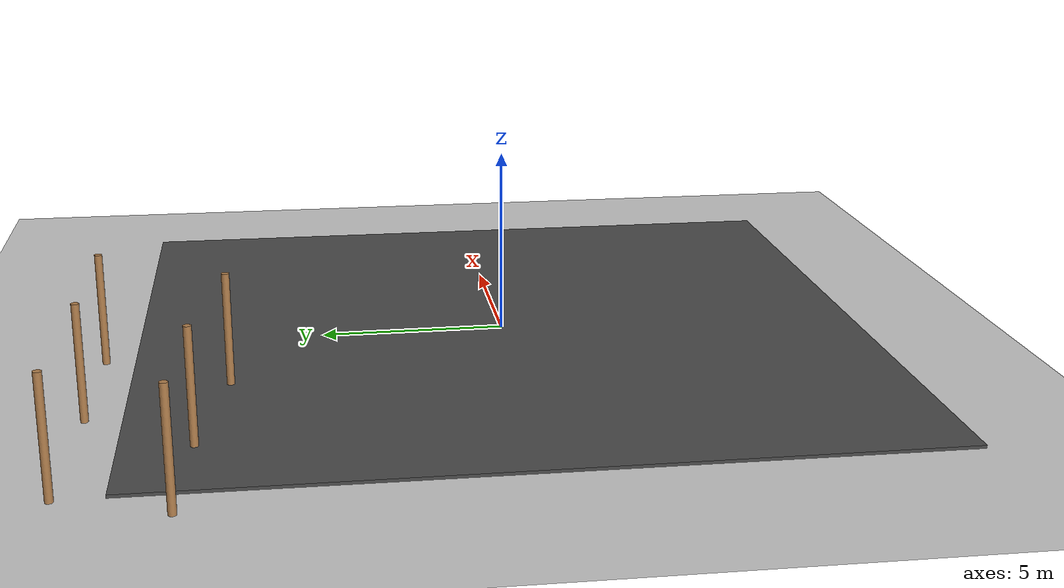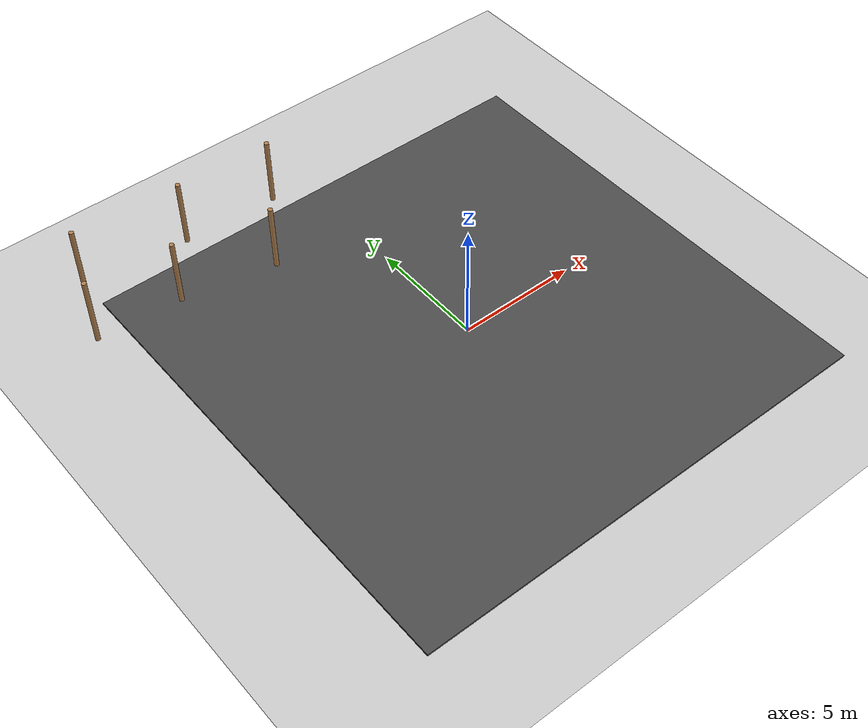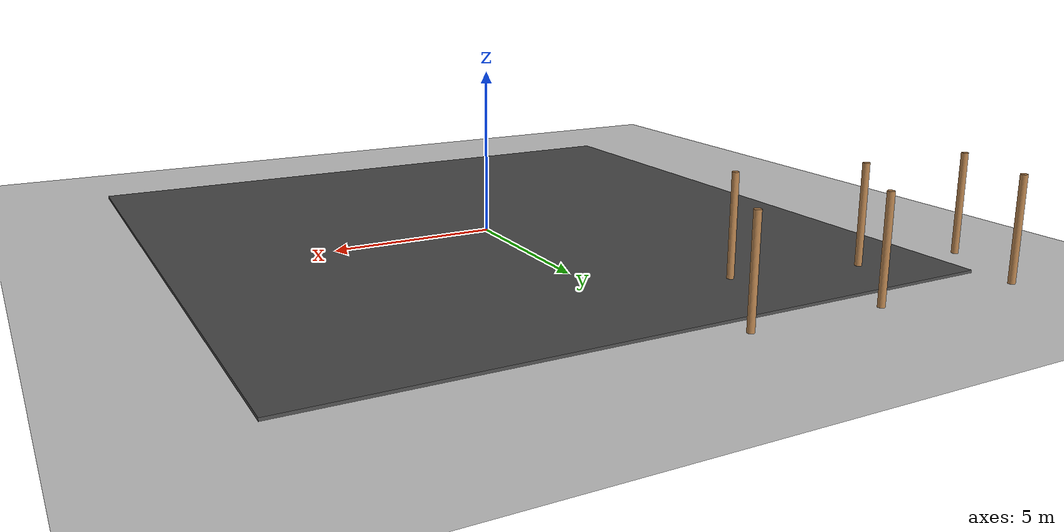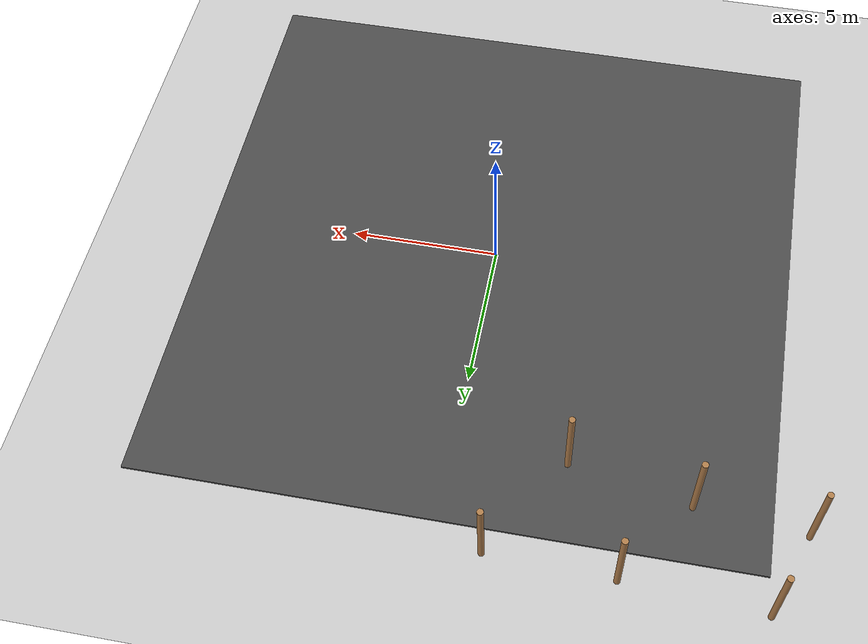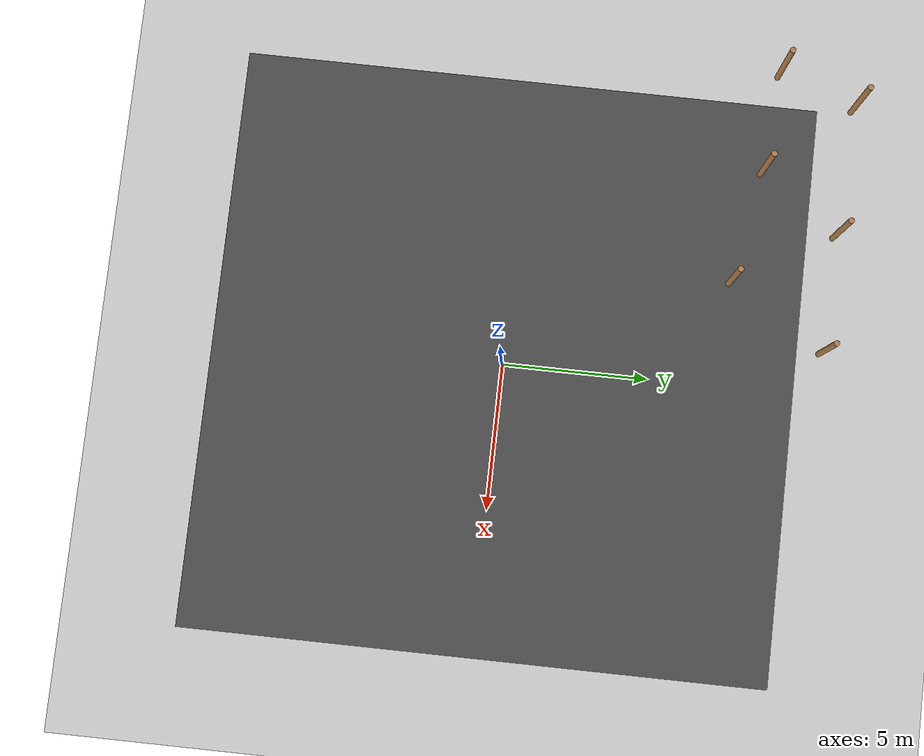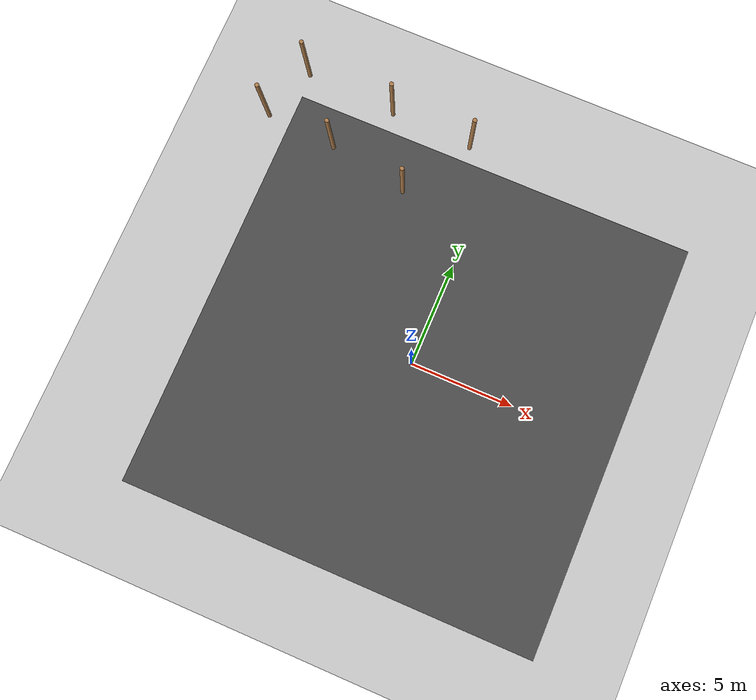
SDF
<sdf version="1.6">
 <world name="default">
  <include><uri>model://ground_plane</uri></include>
  <model name="asphalt_plane">
   <static>1</static>
   <link name="link">
    <collision name="collision"><geometry><box><size>20 20 0.1</size></box></geometry></collision>
    <visual name="visual">
     <cast_shadows>0</cast_shadows>
     <geometry><box><size>20 20 0.1</size></box></geometry>
     <material>
      <script>
       <uri>model://asphalt_plane/materials/scripts</uri>
       <uri>model://asphalt_plane/materials/textures</uri>
       <name>vrc/asphalt</name>
      </script>
     </material>
    </visual>
   </link>
  </model>
  <model name="wooden_cylinder1_clone_0">
   <pose>-11.0868 8.52775 -6.1e-05 0 -0 0</pose>
   <link name="wooden_cylinder::link_0">
    <pose>0 0 1.5 0 -0 0</pose>
    <inertial>
     <mass>1</mass>
     <inertia><ixx>0.145833</ixx><ixy>0</ixy><ixz>0</ixz><iyy>0.145833</iyy><iyz>0</iyz><izz>0.125</izz></inertia>
    </inertial>
    <visual name="visual">
     <geometry><cylinder><radius>0.1</radius><length>3</length></cylinder></geometry>
     <material>
      <lighting>1</lighting>
      <script><uri>file://media/materials/scripts/gazebo.material</uri><name>Gazebo/Wood</name></script>
      <ambient>0.3 0.3 0.3 1</ambient>
      <diffuse>0.7 0.7 0.7 1</diffuse>
      <specular>0.01 0.01 0.01 1</specular>
      <emissive>0 0 0 1</emissive>
      <shader type="vertex"><normal_map>__default__</normal_map></shader>
     </material>
    </visual>
    <collision name="collision">
     <geometry><cylinder><radius>0.1</radius><length>3</length></cylinder></geometry>
     <surface>
      <friction>
       <ode><mu>1</mu><mu2>1</mu2><fdir1>0 0 0</fdir1><slip1>0</slip1><slip2>0</slip2></ode>
       <torsional>
        <coefficient>1</coefficient>
        <patch_radius>0</patch_radius>
        <surface_radius>0</surface_radius>
        <use_patch_radius>1</use_patch_radius>
        <ode><slip>0</slip></ode>
       </torsional>
      </friction>
      <bounce><restitution_coefficient>0</restitution_coefficient><threshold>1e+06</threshold></bounce>
      <contact>
       <collide_without_contact>0</collide_without_contact>
       <collide_without_contact_bitmask>1</collide_without_contact_bitmask>
       <collide_bitmask>1</collide_bitmask>
       <ode>
        <soft_cfm>0</soft_cfm>
        <soft_erp>0.2</soft_erp>
        <kp>1e+13</kp>
        <kd>1</kd>
        <max_vel>0.01</max_vel>
        <min_depth>0</min_depth>
       </ode>
       <bullet>
        <split_impulse>1</split_impulse>
        <split_impulse_penetration_threshold>-0.01</split_impulse_penetration_threshold>
        <soft_cfm>0</soft_cfm>
        <soft_erp>0.2</soft_erp>
        <kp>1e+13</kp>
        <kd>1</kd>
       </bullet>
      </contact>
     </surface>
    </collision>
   </link>
   <static>1</static>
  </model>
  <model name="wooden_cylinder1_clone_31">
   <pose>-7.54136 8.21907 -8.2e-05 0 -0 0</pose>
   <link name="wooden_cylinder::link_0">
    <pose>0 0 1.5 0 -0 0</pose>
    <inertial>
     <mass>1</mass>
     <inertia><ixx>0.145833</ixx><ixy>0</ixy><ixz>0</ixz><iyy>0.145833</iyy><iyz>0</iyz><izz>0.125</izz></inertia>
    </inertial>
    <visual name="visual">
     <geometry><cylinder><radius>0.1</radius><length>3</length></cylinder></geometry>
     <material>
      <lighting>1</lighting>
      <script><uri>file://media/materials/scripts/gazebo.material</uri><name>Gazebo/Wood</name></script>
      <ambient>0.3 0.3 0.3 1</ambient>
      <diffuse>0.7 0.7 0.7 1</diffuse>
      <specular>0.01 0.01 0.01 1</specular>
      <emissive>0 0 0 1</emissive>
      <shader type="vertex"><normal_map>__default__</normal_map></shader>
     </material>
    </visual>
    <collision name="collision">
     <geometry><cylinder><radius>0.1</radius><length>3</length></cylinder></geometry>
     <surface>
      <friction>
       <ode><mu>1</mu><mu2>1</mu2><fdir1>0 0 0</fdir1><slip1>0</slip1><slip2>0</slip2></ode>
       <torsional>
        <coefficient>1</coefficient>
        <patch_radius>0</patch_radius>
        <surface_radius>0</surface_radius>
        <use_patch_radius>1</use_patch_radius>
        <ode><slip>0</slip></ode>
       </torsional>
      </friction>
      <bounce><restitution_coefficient>0</restitution_coefficient><threshold>1e+06</threshold></bounce>
      <contact>
       <collide_without_contact>0</collide_without_contact>
       <collide_without_contact_bitmask>1</collide_without_contact_bitmask>
       <collide_bitmask>1</collide_bitmask>
       <ode>
        <soft_cfm>0</soft_cfm>
        <soft_erp>0.2</soft_erp>
        <kp>1e+13</kp>
        <kd>1</kd>
        <max_vel>0.01</max_vel>
        <min_depth>0</min_depth>
       </ode>
       <bullet>
        <split_impulse>1</split_impulse>
        <split_impulse_penetration_threshold>-0.01</split_impulse_penetration_threshold>
        <soft_cfm>0</soft_cfm>
        <soft_erp>0.2</soft_erp>
        <kp>1e+13</kp>
        <kd>1</kd>
       </bullet>
      </contact>
     </surface>
    </collision>
   </link>
   <static>1</static>
  </model>
  <model name="wooden_cylinder1_clone_33">
   <pose>-3.60261 7.46972 3.2e-05 0 -0 0</pose>
   <link name="wooden_cylinder::link_0">
    <pose>0 0 1.5 0 -0 0</pose>
    <inertial>
     <mass>1</mass>
     <inertia><ixx>0.145833</ixx><ixy>0</ixy><ixz>0</ixz><iyy>0.145833</iyy><iyz>0</iyz><izz>0.125</izz></inertia>
    </inertial>
    <visual name="visual">
     <geometry><cylinder><radius>0.1</radius><length>3</length></cylinder></geometry>
     <material>
      <lighting>1</lighting>
      <script><uri>file://media/materials/scripts/gazebo.material</uri><name>Gazebo/Wood</name></script>
      <ambient>0.3 0.3 0.3 1</ambient>
      <diffuse>0.7 0.7 0.7 1</diffuse>
      <specular>0.01 0.01 0.01 1</specular>
      <emissive>0 0 0 1</emissive>
      <shader type="vertex"><normal_map>__default__</normal_map></shader>
     </material>
    </visual>
    <collision name="collision">
     <geometry><cylinder><radius>0.1</radius><length>3</length></cylinder></geometry>
     <surface>
      <friction>
       <ode><mu>1</mu><mu2>1</mu2><fdir1>0 0 0</fdir1><slip1>0</slip1><slip2>0</slip2></ode>
       <torsional>
        <coefficient>1</coefficient>
        <patch_radius>0</patch_radius>
        <surface_radius>0</surface_radius>
        <use_patch_radius>1</use_patch_radius>
        <ode><slip>0</slip></ode>
       </torsional>
      </friction>
      <bounce><restitution_coefficient>0</restitution_coefficient><threshold>1e+06</threshold></bounce>
      <contact>
       <collide_without_contact>0</collide_without_contact>
       <collide_without_contact_bitmask>1</collide_without_contact_bitmask>
       <collide_bitmask>1</collide_bitmask>
       <ode>
        <soft_cfm>0</soft_cfm>
        <soft_erp>0.2</soft_erp>
        <kp>1e+13</kp>
        <kd>1</kd>
        <max_vel>0.01</max_vel>
        <min_depth>0</min_depth>
       </ode>
       <bullet>
        <split_impulse>1</split_impulse>
        <split_impulse_penetration_threshold>-0.01</split_impulse_penetration_threshold>
        <soft_cfm>0</soft_cfm>
        <soft_erp>0.2</soft_erp>
        <kp>1e+13</kp>
        <kd>1</kd>
       </bullet>
      </contact>
     </surface>
    </collision>
   </link>
   <static>1</static>
  </model>
  <model name="wooden_cylinder1_clone_36">
   <pose>-10.1014 11.1845 6.2e-05 0 -0 0</pose>
   <link name="wooden_cylinder::link_0">
    <pose>0 0 1.5 0 -0 0</pose>
    <inertial>
     <mass>1</mass>
     <inertia><ixx>0.145833</ixx><ixy>0</ixy><ixz>0</ixz><iyy>0.145833</iyy><iyz>0</iyz><izz>0.125</izz></inertia>
    </inertial>
    <visual name="visual">
     <geometry><cylinder><radius>0.1</radius><length>3</length></cylinder></geometry>
     <material>
      <lighting>1</lighting>
      <script><uri>file://media/materials/scripts/gazebo.material</uri><name>Gazebo/Wood</name></script>
      <ambient>0.3 0.3 0.3 1</ambient>
      <diffuse>0.7 0.7 0.7 1</diffuse>
      <specular>0.01 0.01 0.01 1</specular>
      <emissive>0 0 0 1</emissive>
      <shader type="vertex"><normal_map>__default__</normal_map></shader>
     </material>
    </visual>
    <collision name="collision">
     <geometry><cylinder><radius>0.1</radius><length>3</length></cylinder></geometry>
     <surface>
      <friction>
       <ode><mu>1</mu><mu2>1</mu2><fdir1>0 0 0</fdir1><slip1>0</slip1><slip2>0</slip2></ode>
       <torsional>
        <coefficient>1</coefficient>
        <patch_radius>0</patch_radius>
        <surface_radius>0</surface_radius>
        <use_patch_radius>1</use_patch_radius>
        <ode><slip>0</slip></ode>
       </torsional>
      </friction>
      <bounce><restitution_coefficient>0</restitution_coefficient><threshold>1e+06</threshold></bounce>
      <contact>
       <collide_without_contact>0</collide_without_contact>
       <collide_without_contact_bitmask>1</collide_without_contact_bitmask>
       <collide_bitmask>1</collide_bitmask>
       <ode>
        <soft_cfm>0</soft_cfm>
        <soft_erp>0.2</soft_erp>
        <kp>1e+13</kp>
        <kd>1</kd>
        <max_vel>0.01</max_vel>
        <min_depth>0</min_depth>
       </ode>
       <bullet>
        <split_impulse>1</split_impulse>
        <split_impulse_penetration_threshold>-0.01</split_impulse_penetration_threshold>
        <soft_cfm>0</soft_cfm>
        <soft_erp>0.2</soft_erp>
        <kp>1e+13</kp>
        <kd>1</kd>
       </bullet>
      </contact>
     </surface>
    </collision>
   </link>
   <static>1</static>
  </model>
  <model name="wooden_cylinder1_clone_39">
   <pose>-1.49559 10.7742 -7.7e-05 0 -0 0</pose>
   <link name="wooden_cylinder::link_0">
    <pose>0 0 1.5 0 -0 0</pose>
    <inertial>
     <mass>1</mass>
     <inertia><ixx>0.145833</ixx><ixy>0</ixy><ixz>0</ixz><iyy>0.145833</iyy><iyz>0</iyz><izz>0.125</izz></inertia>
    </inertial>
    <visual name="visual">
     <geometry><cylinder><radius>0.1</radius><length>3</length></cylinder></geometry>
     <material>
      <lighting>1</lighting>
      <script><uri>file://media/materials/scripts/gazebo.material</uri><name>Gazebo/Wood</name></script>
      <ambient>0.3 0.3 0.3 1</ambient>
      <diffuse>0.7 0.7 0.7 1</diffuse>
      <specular>0.01 0.01 0.01 1</specular>
      <emissive>0 0 0 1</emissive>
      <shader type="vertex"><normal_map>__default__</normal_map></shader>
     </material>
    </visual>
    <collision name="collision">
     <geometry><cylinder><radius>0.1</radius><length>3</length></cylinder></geometry>
     <surface>
      <friction>
       <ode><mu>1</mu><mu2>1</mu2><fdir1>0 0 0</fdir1><slip1>0</slip1><slip2>0</slip2></ode>
       <torsional>
        <coefficient>1</coefficient>
        <patch_radius>0</patch_radius>
        <surface_radius>0</surface_radius>
        <use_patch_radius>1</use_patch_radius>
        <ode><slip>0</slip></ode>
       </torsional>
      </friction>
      <bounce><restitution_coefficient>0</restitution_coefficient><threshold>1e+06</threshold></bounce>
      <contact>
       <collide_without_contact>0</collide_without_contact>
       <collide_without_contact_bitmask>1</collide_without_contact_bitmask>
       <collide_bitmask>1</collide_bitmask>
       <ode>
        <soft_cfm>0</soft_cfm>
        <soft_erp>0.2</soft_erp>
        <kp>1e+13</kp>
        <kd>1</kd>
        <max_vel>0.01</max_vel>
        <min_depth>0</min_depth>
       </ode>
       <bullet>
        <split_impulse>1</split_impulse>
        <split_impulse_penetration_threshold>-0.01</split_impulse_penetration_threshold>
        <soft_cfm>0</soft_cfm>
        <soft_erp>0.2</soft_erp>
        <kp>1e+13</kp>
        <kd>1</kd>
       </bullet>
      </contact>
     </surface>
    </collision>
   </link>
   <static>1</static>
  </model>
  <model name="wooden_cylinder1_clone_42">
   <pose>-5.57305 10.9136 5.2e-05 0 -0 0</pose>
   <link name="wooden_cylinder::link_0">
    <pose>0 0 1.5 0 -0 0</pose>
    <inertial>
     <mass>1</mass>
     <inertia><ixx>0.145833</ixx><ixy>0</ixy><ixz>0</ixz><iyy>0.145833</iyy><iyz>0</iyz><izz>0.125</izz></inertia>
    </inertial>
    <visual name="visual">
     <geometry><cylinder><radius>0.1</radius><length>3</length></cylinder></geometry>
     <material>
      <lighting>1</lighting>
      <script><uri>file://media/materials/scripts/gazebo.material</uri><name>Gazebo/Wood</name></script>
      <ambient>0.3 0.3 0.3 1</ambient>
      <diffuse>0.7 0.7 0.7 1</diffuse>
      <specular>0.01 0.01 0.01 1</specular>
      <emissive>0 0 0 1</emissive>
      <shader type="vertex"><normal_map>__default__</normal_map></shader>
     </material>
    </visual>
    <collision name="collision">
     <geometry><cylinder><radius>0.1</radius><length>3</length></cylinder></geometry>
     <surface>
      <friction>
       <ode><mu>1</mu><mu2>1</mu2><fdir1>0 0 0</fdir1><slip1>0</slip1><slip2>0</slip2></ode>
       <torsional>
        <coefficient>1</coefficient>
        <patch_radius>0</patch_radius>
        <surface_radius>0</surface_radius>
        <use_patch_radius>1</use_patch_radius>
        <ode><slip>0</slip></ode>
       </torsional>
      </friction>
      <bounce><restitution_coefficient>0</restitution_coefficient><threshold>1e+06</threshold></bounce>
      <contact>
       <collide_without_contact>0</collide_without_contact>
       <collide_without_contact_bitmask>1</collide_without_contact_bitmask>
       <collide_bitmask>1</collide_bitmask>
       <ode>
        <soft_cfm>0</soft_cfm>
        <soft_erp>0.2</soft_erp>
        <kp>1e+13</kp>
        <kd>1</kd>
        <max_vel>0.01</max_vel>
        <min_depth>0</min_depth>
       </ode>
       <bullet>
        <split_impulse>1</split_impulse>
        <split_impulse_penetration_threshold>-0.01</split_impulse_penetration_threshold>
        <soft_cfm>0</soft_cfm>
        <soft_erp>0.2</soft_erp>
        <kp>1e+13</kp>
        <kd>1</kd>
       </bullet>
      </contact>
     </surface>
    </collision>
   </link>
   <static>1</static>
  </model>
 </world>
</sdf>
